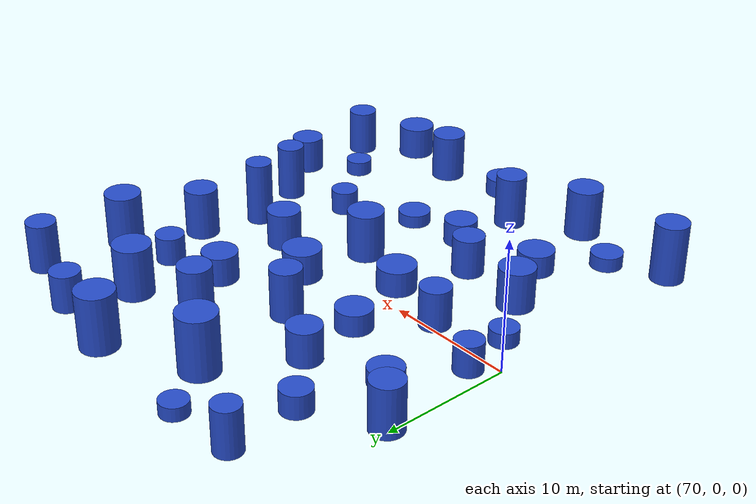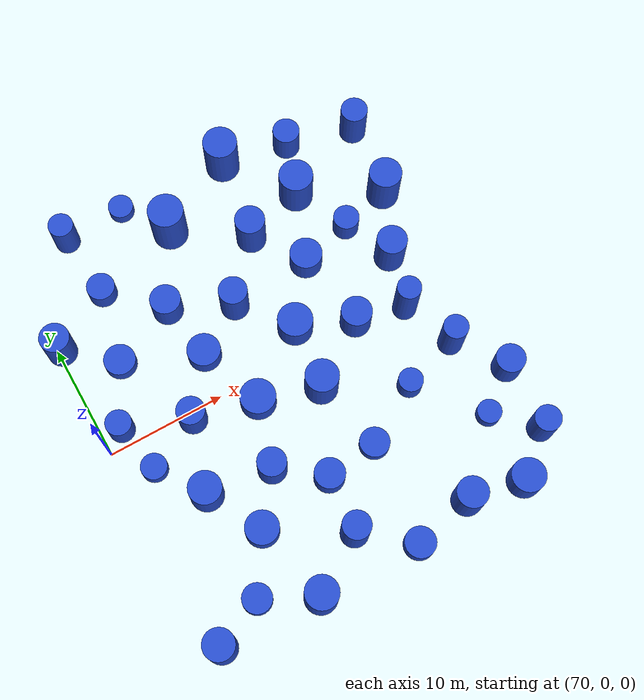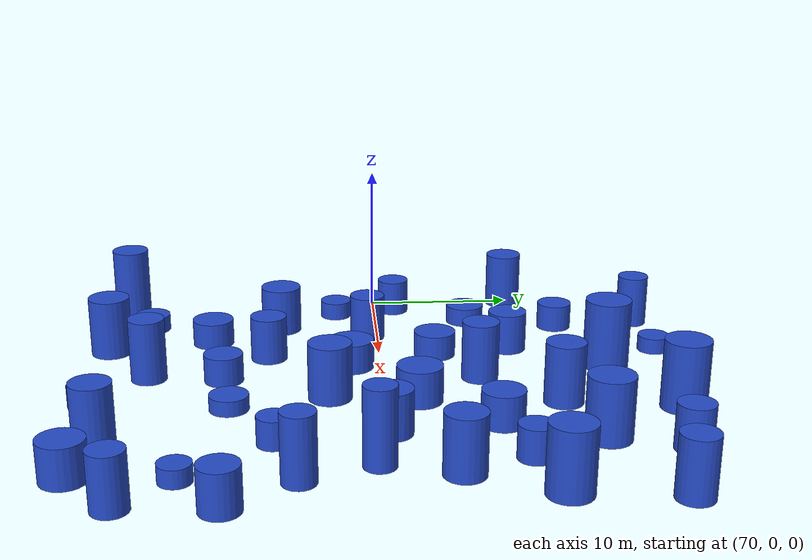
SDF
<sdf version="1.7">
 <world name="default">
  <model name="1">
   <static>1</static>
   <link name="link">
    <inertial>
     <mass>2</mass>
     <inertia><ixx>2.2684</ixx><ixy>0</ixy><ixz>0</ixz><iyy>2.2684</iyy><iyz>0</iyz><izz>1.44593</izz></inertia>
    </inertial>
    <collision name="collision">
     <geometry><cylinder><length>3.0451</length><radius>1.20247</radius></cylinder></geometry>
     <surface><contact><collide_without_contact>1</collide_without_contact></contact></surface>
    </collision>
    <visual name="visual">
     <geometry><cylinder><length>3.0451</length><radius>1.20247</radius></cylinder></geometry>
     <material>
      <script><uri>file://media/materials/scripts/gazebo.material</uri><name>Gazebo/Blue</name></script>
     </material>
    </visual>
    <gravity>0</gravity>
   </link>
   <pose>80.6973 -7.39447 1.52255 0 -0 0</pose>
  </model>
  <model name="2">
   <static>1</static>
   <link name="link">
    <inertial>
     <mass>2</mass>
     <inertia><ixx>2.24208</ixx><ixy>0</ixy><ixz>0</ixz><iyy>2.24208</iyy><iyz>0</iyz><izz>1.66847</izz></inertia>
    </inertial>
    <collision name="collision">
     <geometry><cylinder><length>2.90639</length><radius>1.29169</radius></cylinder></geometry>
     <surface><contact><collide_without_contact>1</collide_without_contact></contact></surface>
    </collision>
    <visual name="visual">
     <geometry><cylinder><length>2.90639</length><radius>1.29169</radius></cylinder></geometry>
     <material>
      <script><uri>file://media/materials/scripts/gazebo.material</uri><name>Gazebo/Blue</name></script>
     </material>
    </visual>
    <gravity>0</gravity>
   </link>
   <pose>92.757 0.175366 1.45319 0 -0 0</pose>
  </model>
  <model name="4">
   <static>1</static>
   <link name="link">
    <inertial>
     <mass>2</mass>
     <inertia><ixx>4.69882</ixx><ixy>0</ixy><ixz>0</ixz><iyy>4.69882</iyy><iyz>0</iyz><izz>2.22425</izz></inertia>
    </inertial>
    <collision name="collision">
     <geometry><cylinder><length>4.63899</length><radius>1.49139</radius></cylinder></geometry>
     <surface><contact><collide_without_contact>1</collide_without_contact></contact></surface>
    </collision>
    <visual name="visual">
     <geometry><cylinder><length>4.63899</length><radius>1.49139</radius></cylinder></geometry>
     <material>
      <script><uri>file://media/materials/scripts/gazebo.material</uri><name>Gazebo/Blue</name></script>
     </material>
    </visual>
    <gravity>0</gravity>
   </link>
   <pose>83.0964 14.8871 2.31949 0 -0 0</pose>
  </model>
  <model name="5">
   <static>1</static>
   <link name="link">
    <inertial>
     <mass>2</mass>
     <inertia><ixx>1.76821</ixx><ixy>0</ixy><ixz>0</ixz><iyy>1.76821</iyy><iyz>0</iyz><izz>1.863</izz></inertia>
    </inertial>
    <collision name="collision">
     <geometry><cylinder><length>2.24059</length><radius>1.36492</radius></cylinder></geometry>
     <surface><contact><collide_without_contact>1</collide_without_contact></contact></surface>
    </collision>
    <visual name="visual">
     <geometry><cylinder><length>2.24059</length><radius>1.36492</radius></cylinder></geometry>
     <material>
      <script><uri>file://media/materials/scripts/gazebo.material</uri><name>Gazebo/Blue</name></script>
     </material>
    </visual>
    <gravity>0</gravity>
   </link>
   <pose>91.7951 6.85711 1.1203 0 -0 0</pose>
  </model>
  <model name="9">
   <static>1</static>
   <link name="link">
    <inertial>
     <mass>2</mass>
     <inertia><ixx>3.22683</ixx><ixy>0</ixy><ixz>0</ixz><iyy>3.22683</iyy><iyz>0</iyz><izz>1.43859</izz></inertia>
    </inertial>
    <collision name="collision">
     <geometry><cylinder><length>3.87882</length><radius>1.19941</radius></cylinder></geometry>
     <surface><contact><collide_without_contact>1</collide_without_contact></contact></surface>
    </collision>
    <visual name="visual">
     <geometry><cylinder><length>3.87882</length><radius>1.19941</radius></cylinder></geometry>
     <material>
      <script><uri>file://media/materials/scripts/gazebo.material</uri><name>Gazebo/Blue</name></script>
     </material>
    </visual>
    <gravity>0</gravity>
   </link>
   <pose>84.7053 6.32276 1.93941 0 -0 0</pose>
  </model>
  <model name="10">
   <static>1</static>
   <link name="link">
    <inertial>
     <mass>2</mass>
     <inertia>
      <ixx>0.945435</ixx>
      <ixy>0</ixy>
      <ixz>0</ixz>
      <iyy>0.945435</iyy>
      <iyz>0</iyz>
      <izz>1.55448</izz>
     </inertia>
    </inertial>
    <collision name="collision">
     <geometry><cylinder><length>1.00457</length><radius>1.24679</radius></cylinder></geometry>
     <surface><contact><collide_without_contact>1</collide_without_contact></contact></surface>
    </collision>
    <visual name="visual">
     <geometry><cylinder><length>1.00457</length><radius>1.24679</radius></cylinder></geometry>
     <material>
      <script><uri>file://media/materials/scripts/gazebo.material</uri><name>Gazebo/Blue</name></script>
     </material>
    </visual>
    <gravity>0</gravity>
   </link>
   <pose>88.8436 -9.60499 0.502286 0 -0 0</pose>
  </model>
  <model name="12">
   <static>1</static>
   <link name="link">
    <inertial>
     <mass>2</mass>
     <inertia><ixx>1.73744</ixx><ixy>0</ixy><ixz>0</ixz><iyy>1.73744</iyy><iyz>0</iyz><izz>2.20157</izz></inertia>
    </inertial>
    <collision name="collision">
     <geometry><cylinder><length>1.95446</length><radius>1.48377</radius></cylinder></geometry>
     <surface><contact><collide_without_contact>1</collide_without_contact></contact></surface>
    </collision>
    <visual name="visual">
     <geometry><cylinder><length>1.95446</length><radius>1.48377</radius></cylinder></geometry>
     <material>
      <script><uri>file://media/materials/scripts/gazebo.material</uri><name>Gazebo/Blue</name></script>
     </material>
    </visual>
    <gravity>0</gravity>
   </link>
   <pose>82.4183 -1.92681 0.977232 0 -0 0</pose>
  </model>
  <model name="14">
   <static>1</static>
   <link name="link">
    <inertial>
     <mass>2</mass>
     <inertia><ixx>3.25121</ixx><ixy>0</ixy><ixz>0</ixz><iyy>3.25121</iyy><iyz>0</iyz><izz>1.62236</izz></inertia>
    </inertial>
    <collision name="collision">
     <geometry><cylinder><length>3.82625</length><radius>1.27372</radius></cylinder></geometry>
     <surface><contact><collide_without_contact>1</collide_without_contact></contact></surface>
    </collision>
    <visual name="visual">
     <geometry><cylinder><length>3.82625</length><radius>1.27372</radius></cylinder></geometry>
     <material>
      <script><uri>file://media/materials/scripts/gazebo.material</uri><name>Gazebo/Blue</name></script>
     </material>
    </visual>
    <gravity>0</gravity>
   </link>
   <pose>98.2023 3.86457 1.91312 0 -0 0</pose>
  </model>
  <model name="18">
   <static>1</static>
   <link name="link">
    <inertial>
     <mass>2</mass>
     <inertia><ixx>3.74185</ixx><ixy>0</ixy><ixz>0</ixz><iyy>3.74185</iyy><iyz>0</iyz><izz>2.06895</izz></inertia>
    </inertial>
    <collision name="collision">
     <geometry><cylinder><length>4.03042</length><radius>1.43839</radius></cylinder></geometry>
     <surface><contact><collide_without_contact>1</collide_without_contact></contact></surface>
    </collision>
    <visual name="visual">
     <geometry><cylinder><length>4.03042</length><radius>1.43839</radius></cylinder></geometry>
     <material>
      <script><uri>file://media/materials/scripts/gazebo.material</uri><name>Gazebo/Blue</name></script>
     </material>
    </visual>
    <gravity>0</gravity>
   </link>
   <pose>94.1201 12.7132 2.01521 0 -0 0</pose>
  </model>
  <model name="20">
   <static>1</static>
   <link name="link">
    <inertial>
     <mass>2</mass>
     <inertia><ixx>3.08082</ixx><ixy>0</ixy><ixz>0</ixz><iyy>3.08082</iyy><iyz>0</iyz><izz>1.29463</izz></inertia>
    </inertial>
    <collision name="collision">
     <geometry><cylinder><length>3.82113</length><radius>1.13782</radius></cylinder></geometry>
     <surface><contact><collide_without_contact>1</collide_without_contact></contact></surface>
    </collision>
    <visual name="visual">
     <geometry><cylinder><length>3.82113</length><radius>1.13782</radius></cylinder></geometry>
     <material>
      <script><uri>file://media/materials/scripts/gazebo.material</uri><name>Gazebo/Blue</name></script>
     </material>
    </visual>
    <gravity>0</gravity>
   </link>
   <pose>101.496 15.7288 1.91057 0 -0 0</pose>
  </model>
  <model name="23">
   <static>1</static>
   <link name="link">
    <inertial>
     <mass>2</mass>
     <inertia><ixx>3.58983</ixx><ixy>0</ixy><ixz>0</ixz><iyy>3.58983</iyy><iyz>0</iyz><izz>1.36018</izz></inertia>
    </inertial>
    <collision name="collision">
     <geometry><cylinder><length>4.17833</length><radius>1.16627</radius></cylinder></geometry>
     <surface><contact><collide_without_contact>1</collide_without_contact></contact></surface>
    </collision>
    <visual name="visual">
     <geometry><cylinder><length>4.17833</length><radius>1.16627</radius></cylinder></geometry>
     <material>
      <script><uri>file://media/materials/scripts/gazebo.material</uri><name>Gazebo/Blue</name></script>
     </material>
    </visual>
    <gravity>0</gravity>
   </link>
   <pose>83.8544 -15.0441 2.08917 0 -0 0</pose>
  </model>
  <model name="25">
   <static>1</static>
   <link name="link">
    <inertial>
     <mass>2</mass>
     <inertia><ixx>4.39114</ixx><ixy>0</ixy><ixz>0</ixz><iyy>4.39114</iyy><iyz>0</iyz><izz>1.60554</izz></inertia>
    </inertial>
    <collision name="collision">
     <geometry><cylinder><length>4.64006</length><radius>1.2671</radius></cylinder></geometry>
     <surface><contact><collide_without_contact>1</collide_without_contact></contact></surface>
    </collision>
    <visual name="visual">
     <geometry><cylinder><length>4.64006</length><radius>1.2671</radius></cylinder></geometry>
     <material>
      <script><uri>file://media/materials/scripts/gazebo.material</uri><name>Gazebo/Blue</name></script>
     </material>
    </visual>
    <gravity>0</gravity>
   </link>
   <pose>70.6013 -17.7327 2.32003 0 -0 0</pose>
  </model>
  <model name="27">
   <static>1</static>
   <link name="link">
    <inertial>
     <mass>2</mass>
     <inertia>
      <ixx>0.729598</ixx>
      <ixy>0</ixy>
      <ixz>0</ixz>
      <iyy>0.729598</iyy>
      <iyz>0</iyz>
      <izz>1.02175</izz>
     </inertia>
    </inertial>
    <collision name="collision">
     <geometry><cylinder><length>1.14557</length><radius>1.01082</radius></cylinder></geometry>
     <surface><contact><collide_without_contact>1</collide_without_contact></contact></surface>
    </collision>
    <visual name="visual">
     <geometry><cylinder><length>1.14557</length><radius>1.01082</radius></cylinder></geometry>
     <material>
      <script><uri>file://media/materials/scripts/gazebo.material</uri><name>Gazebo/Blue</name></script>
     </material>
    </visual>
    <gravity>0</gravity>
   </link>
   <pose>98.1711 -11.9642 0.572784 0 -0 0</pose>
  </model>
  <model name="31">
   <static>1</static>
   <link name="link">
    <inertial>
     <mass>2</mass>
     <inertia><ixx>1.2338</ixx><ixy>0</ixy><ixz>0</ixz><iyy>1.2338</iyy><iyz>0</iyz><izz>1.3907</izz></inertia>
    </inertial>
    <collision name="collision">
     <geometry><cylinder><length>1.79742</length><radius>1.17928</radius></cylinder></geometry>
     <surface><contact><collide_without_contact>1</collide_without_contact></contact></surface>
    </collision>
    <visual name="visual">
     <geometry><cylinder><length>1.79742</length><radius>1.17928</radius></cylinder></geometry>
     <material>
      <script><uri>file://media/materials/scripts/gazebo.material</uri><name>Gazebo/Blue</name></script>
     </material>
    </visual>
    <gravity>0</gravity>
   </link>
   <pose>75.6136 12.7351 0.898712 0 -0 0</pose>
  </model>
  <model name="42">
   <static>1</static>
   <link name="link">
    <inertial>
     <mass>2</mass>
     <inertia><ixx>2.62219</ixx><ixy>0</ixy><ixz>0</ixz><iyy>2.62219</iyy><iyz>0</iyz><izz>1.08521</izz></inertia>
    </inertial>
    <collision name="collision">
     <geometry><cylinder><length>3.53236</length><radius>1.04173</radius></cylinder></geometry>
     <surface><contact><collide_without_contact>1</collide_without_contact></contact></surface>
    </collision>
    <visual name="visual">
     <geometry><cylinder><length>3.53236</length><radius>1.04173</radius></cylinder></geometry>
     <material>
      <script><uri>file://media/materials/scripts/gazebo.material</uri><name>Gazebo/Blue</name></script>
     </material>
    </visual>
    <gravity>0</gravity>
   </link>
   <pose>75.0855 18.4586 1.76618 0 -0 0</pose>
  </model>
  <model name="47">
   <static>1</static>
   <link name="link">
    <inertial>
     <mass>2</mass>
     <inertia><ixx>3.12949</ixx><ixy>0</ixy><ixz>0</ixz><iyy>3.12949</iyy><iyz>0</iyz><izz>1.6363</izz></inertia>
    </inertial>
    <collision name="collision">
     <geometry><cylinder><length>3.72399</length><radius>1.27918</radius></cylinder></geometry>
     <surface><contact><collide_without_contact>1</collide_without_contact></contact></surface>
    </collision>
    <visual name="visual">
     <geometry><cylinder><length>3.72399</length><radius>1.27918</radius></cylinder></geometry>
     <material>
      <script><uri>file://media/materials/scripts/gazebo.material</uri><name>Gazebo/Blue</name></script>
     </material>
    </visual>
    <gravity>0</gravity>
   </link>
   <pose>92.9366 -17.1481 1.86199 0 -0 0</pose>
  </model>
  <model name="52">
   <static>1</static>
   <link name="link">
    <inertial>
     <mass>2</mass>
     <inertia>
      <ixx>0.831043</ixx>
      <ixy>0</ixy>
      <ixz>0</ixz>
      <iyy>0.831043</iyy>
      <iyz>0</iyz>
      <izz>1.18765</izz>
     </inertia>
    </inertial>
    <collision name="collision">
     <geometry><cylinder><length>1.19303</length><radius>1.08979</radius></cylinder></geometry>
     <surface><contact><collide_without_contact>1</collide_without_contact></contact></surface>
    </collision>
    <visual name="visual">
     <geometry><cylinder><length>1.19303</length><radius>1.08979</radius></cylinder></geometry>
     <material>
      <script><uri>file://media/materials/scripts/gazebo.material</uri><name>Gazebo/Blue</name></script>
     </material>
    </visual>
    <gravity>0</gravity>
   </link>
   <pose>72.5245 -2.77846 0.596513 0 -0 0</pose>
  </model>
  <model name="57">
   <static>1</static>
   <link name="link">
    <inertial>
     <mass>2</mass>
     <inertia><ixx>1.07877</ixx><ixy>0</ixy><ixz>0</ixz><iyy>1.07877</iyy><iyz>0</iyz><izz>1.04254</izz></inertia>
    </inertial>
    <collision name="collision">
     <geometry><cylinder><length>1.82893</length><radius>1.02105</radius></cylinder></geometry>
     <surface><contact><collide_without_contact>1</collide_without_contact></contact></surface>
    </collision>
    <visual name="visual">
     <geometry><cylinder><length>1.82893</length><radius>1.02105</radius></cylinder></geometry>
     <material>
      <script><uri>file://media/materials/scripts/gazebo.material</uri><name>Gazebo/Blue</name></script>
     </material>
    </visual>
    <gravity>0</gravity>
   </link>
   <pose>93.853 -6.73903 0.914464 0 -0 0</pose>
  </model>
  <model name="62">
   <static>1</static>
   <link name="link">
    <inertial>
     <mass>2</mass>
     <inertia><ixx>3.9194</ixx><ixy>0</ixy><ixz>0</ixz><iyy>3.9194</iyy><iyz>0</iyz><izz>1.90143</izz></inertia>
    </inertial>
    <collision name="collision">
     <geometry><cylinder><length>4.22044</length><radius>1.37892</radius></cylinder></geometry>
     <surface><contact><collide_without_contact>1</collide_without_contact></contact></surface>
    </collision>
    <visual name="visual">
     <geometry><cylinder><length>4.22044</length><radius>1.37892</radius></cylinder></geometry>
     <material>
      <script><uri>file://media/materials/scripts/gazebo.material</uri><name>Gazebo/Blue</name></script>
     </material>
    </visual>
    <gravity>0</gravity>
   </link>
   <pose>100.7 9.19752 2.11022 0 -0 0</pose>
  </model>
  <model name="66">
   <static>1</static>
   <link name="link">
    <inertial>
     <mass>2</mass>
     <inertia><ixx>1.13186</ixx><ixy>0</ixy><ixz>0</ixz><iyy>1.13186</iyy><iyz>0</iyz><izz>1.7437</izz></inertia>
    </inertial>
    <collision name="collision">
     <geometry><cylinder><length>1.24904</length><radius>1.32049</radius></cylinder></geometry>
     <surface><contact><collide_without_contact>1</collide_without_contact></contact></surface>
    </collision>
    <visual name="visual">
     <geometry><cylinder><length>1.24904</length><radius>1.32049</radius></cylinder></geometry>
     <material>
      <script><uri>file://media/materials/scripts/gazebo.material</uri><name>Gazebo/Blue</name></script>
     </material>
    </visual>
    <gravity>0</gravity>
   </link>
   <pose>74.1453 6.48343 0.624518 0 -0 0</pose>
  </model>
  <model name="68">
   <static>1</static>
   <link name="link">
    <inertial>
     <mass>2</mass>
     <inertia><ixx>2.04155</ixx><ixy>0</ixy><ixz>0</ixz><iyy>2.04155</iyy><iyz>0</iyz><izz>1.64611</izz></inertia>
    </inertial>
    <collision name="collision">
     <geometry><cylinder><length>2.70388</length><radius>1.28301</radius></cylinder></geometry>
     <surface><contact><collide_without_contact>1</collide_without_contact></contact></surface>
    </collision>
    <visual name="visual">
     <geometry><cylinder><length>2.70388</length><radius>1.28301</radius></cylinder></geometry>
     <material>
      <script><uri>file://media/materials/scripts/gazebo.material</uri><name>Gazebo/Blue</name></script>
     </material>
    </visual>
    <gravity>0</gravity>
   </link>
   <pose>79.6793 8.77001 1.35194 0 -0 0</pose>
  </model>
  <model name="69">
   <static>1</static>
   <link name="link">
    <inertial>
     <mass>2</mass>
     <inertia>
      <ixx>0.958419</ixx>
      <ixy>0</ixy>
      <ixz>0</ixz>
      <iyy>0.958419</iyy>
      <iyz>0</iyz>
      <izz>1.49661</izz>
     </inertia>
    </inertial>
    <collision name="collision">
     <geometry><cylinder><length>1.1228</length><radius>1.22336</radius></cylinder></geometry>
     <surface><contact><collide_without_contact>1</collide_without_contact></contact></surface>
    </collision>
    <visual name="visual">
     <geometry><cylinder><length>1.1228</length><radius>1.22336</radius></cylinder></geometry>
     <material>
      <script><uri>file://media/materials/scripts/gazebo.material</uri><name>Gazebo/Blue</name></script>
     </material>
    </visual>
    <gravity>0</gravity>
   </link>
   <pose>74.7098 -15.8273 0.561402 0 -0 0</pose>
  </model>
  <model name="71">
   <static>1</static>
   <link name="link">
    <inertial>
     <mass>2</mass>
     <inertia><ixx>3.58328</ixx><ixy>0</ixy><ixz>0</ixz><iyy>3.58328</iyy><iyz>0</iyz><izz>1.07176</izz></inertia>
    </inertial>
    <collision name="collision">
     <geometry><cylinder><length>4.27603</length><radius>1.03526</radius></cylinder></geometry>
     <surface><contact><collide_without_contact>1</collide_without_contact></contact></surface>
    </collision>
    <visual name="visual">
     <geometry><cylinder><length>4.27603</length><radius>1.03526</radius></cylinder></geometry>
     <material>
      <script><uri>file://media/materials/scripts/gazebo.material</uri><name>Gazebo/Blue</name></script>
     </material>
    </visual>
    <gravity>0</gravity>
   </link>
   <pose>98.686 -5.22517 2.13801 0 -0 0</pose>
  </model>
  <model name="72">
   <static>1</static>
   <link name="link">
    <inertial>
     <mass>2</mass>
     <inertia><ixx>2.05239</ixx><ixy>0</ixy><ixz>0</ixz><iyy>2.05239</iyy><iyz>0</iyz><izz>1.31404</izz></inertia>
    </inertial>
    <collision name="collision">
     <geometry><cylinder><length>2.89348</length><radius>1.14632</radius></cylinder></geometry>
     <surface><contact><collide_without_contact>1</collide_without_contact></contact></surface>
    </collision>
    <visual name="visual">
     <geometry><cylinder><length>2.89348</length><radius>1.14632</radius></cylinder></geometry>
     <material>
      <script><uri>file://media/materials/scripts/gazebo.material</uri><name>Gazebo/Blue</name></script>
     </material>
    </visual>
    <gravity>0</gravity>
   </link>
   <pose>95.7105 17.2756 1.44674 0 -0 0</pose>
  </model>
  <model name="73">
   <static>1</static>
   <link name="link">
    <inertial>
     <mass>2</mass>
     <inertia><ixx>2.68918</ixx><ixy>0</ixy><ixz>0</ixz><iyy>2.68918</iyy><iyz>0</iyz><izz>1.19251</izz></inertia>
    </inertial>
    <collision name="collision">
     <geometry><cylinder><length>3.54366</length><radius>1.09202</radius></cylinder></geometry>
     <surface><contact><collide_without_contact>1</collide_without_contact></contact></surface>
    </collision>
    <visual name="visual">
     <geometry><cylinder><length>3.54366</length><radius>1.09202</radius></cylinder></geometry>
     <material>
      <script><uri>file://media/materials/scripts/gazebo.material</uri><name>Gazebo/Blue</name></script>
     </material>
    </visual>
    <gravity>0</gravity>
   </link>
   <pose>101.219 -15.0288 1.77183 0 -0 0</pose>
  </model>
  <model name="75">
   <static>1</static>
   <link name="link">
    <inertial>
     <mass>2</mass>
     <inertia><ixx>2.64904</ixx><ixy>0</ixy><ixz>0</ixz><iyy>2.64904</iyy><iyz>0</iyz><izz>1.8781</izz></inertia>
    </inertial>
    <collision name="collision">
     <geometry><cylinder><length>3.20311</length><radius>1.37044</radius></cylinder></geometry>
     <surface><contact><collide_without_contact>1</collide_without_contact></contact></surface>
    </collision>
    <visual name="visual">
     <geometry><cylinder><length>3.20311</length><radius>1.37044</radius></cylinder></geometry>
     <material>
      <script><uri>file://media/materials/scripts/gazebo.material</uri><name>Gazebo/Blue</name></script>
     </material>
    </visual>
    <gravity>0</gravity>
   </link>
   <pose>75.1926 -6.68164 1.60155 0 -0 0</pose>
  </model>
  <model name="78">
   <static>1</static>
   <link name="link">
    <inertial>
     <mass>2</mass>
     <inertia><ixx>3.20216</ixx><ixy>0</ixy><ixz>0</ixz><iyy>3.20216</iyy><iyz>0</iyz><izz>1.527</izz></inertia>
    </inertial>
    <collision name="collision">
     <geometry><cylinder><length>3.82518</length><radius>1.23572</radius></cylinder></geometry>
     <surface><contact><collide_without_contact>1</collide_without_contact></contact></surface>
    </collision>
    <visual name="visual">
     <geometry><cylinder><length>3.82518</length><radius>1.23572</radius></cylinder></geometry>
     <material>
      <script><uri>file://media/materials/scripts/gazebo.material</uri><name>Gazebo/Blue</name></script>
     </material>
    </visual>
    <gravity>0</gravity>
   </link>
   <pose>70.3775 9.7608 1.91259 0 -0 0</pose>
  </model>
  <model name="93">
   <static>1</static>
   <link name="link">
    <inertial>
     <mass>2</mass>
     <inertia><ixx>1.43921</ixx><ixy>0</ixy><ixz>0</ixz><iyy>1.43921</iyy><iyz>0</iyz><izz>1.94279</izz></inertia>
    </inertial>
    <collision name="collision">
     <geometry><cylinder><length>1.67538</length><radius>1.39384</radius></cylinder></geometry>
     <surface><contact><collide_without_contact>1</collide_without_contact></contact></surface>
    </collision>
    <visual name="visual">
     <geometry><cylinder><length>1.67538</length><radius>1.39384</radius></cylinder></geometry>
     <material>
      <script><uri>file://media/materials/scripts/gazebo.material</uri><name>Gazebo/Blue</name></script>
     </material>
    </visual>
    <gravity>0</gravity>
   </link>
   <pose>80.4902 3.74739 0.837688 0 -0 0</pose>
  </model>
  <model name="94">
   <static>1</static>
   <link name="link">
    <inertial>
     <mass>2</mass>
     <inertia><ixx>4.58407</ixx><ixy>0</ixy><ixz>0</ixz><iyy>4.58407</iyy><iyz>0</iyz><izz>1.00101</izz></inertia>
    </inertial>
    <collision name="collision">
     <geometry><cylinder><length>4.94988</length><radius>1.00051</radius></cylinder></geometry>
     <surface><contact><collide_without_contact>1</collide_without_contact></contact></surface>
    </collision>
    <visual name="visual">
     <geometry><cylinder><length>4.94988</length><radius>1.00051</radius></cylinder></geometry>
     <material>
      <script><uri>file://media/materials/scripts/gazebo.material</uri><name>Gazebo/Blue</name></script>
     </material>
    </visual>
    <gravity>0</gravity>
   </link>
   <pose>96.9632 -0.744304 2.47494 0 -0 0</pose>
  </model>
  <model name="97">
   <static>1</static>
   <link name="link">
    <inertial>
     <mass>2</mass>
     <inertia><ixx>1.48409</ixx><ixy>0</ixy><ixz>0</ixz><iyy>1.48409</iyy><iyz>0</iyz><izz>1.9357</izz></inertia>
    </inertial>
    <collision name="collision">
     <geometry><cylinder><length>1.75995</length><radius>1.3913</radius></cylinder></geometry>
     <surface><contact><collide_without_contact>1</collide_without_contact></contact></surface>
    </collision>
    <visual name="visual">
     <geometry><cylinder><length>1.75995</length><radius>1.3913</radius></cylinder></geometry>
     <material>
      <script><uri>file://media/materials/scripts/gazebo.material</uri><name>Gazebo/Blue</name></script>
     </material>
    </visual>
    <gravity>0</gravity>
   </link>
   <pose>77.6379 -11.3255 0.879977 0 -0 0</pose>
  </model>
  <model name="99">
   <static>1</static>
   <link name="link">
    <inertial>
     <mass>2</mass>
     <inertia><ixx>3.275</ixx><ixy>0</ixy><ixz>0</ixz><iyy>3.275</iyy><iyz>0</iyz><izz>1.92904</izz></inertia>
    </inertial>
    <collision name="collision">
     <geometry><cylinder><length>3.72329</length><radius>1.3889</radius></cylinder></geometry>
     <surface><contact><collide_without_contact>1</collide_without_contact></contact></surface>
    </collision>
    <visual name="visual">
     <geometry><cylinder><length>3.72329</length><radius>1.3889</radius></cylinder></geometry>
     <material>
      <script><uri>file://media/materials/scripts/gazebo.material</uri><name>Gazebo/Blue</name></script>
     </material>
    </visual>
    <gravity>0</gravity>
   </link>
   <pose>87.476 -3.39213 1.86165 0 -0 0</pose>
  </model>
  <model name="100">
   <static>1</static>
   <link name="link">
    <inertial>
     <mass>2</mass>
     <inertia><ixx>4.35536</ixx><ixy>0</ixy><ixz>0</ixz><iyy>4.35536</iyy><iyz>0</iyz><izz>2.10136</izz></inertia>
    </inertial>
    <collision name="collision">
     <geometry><cylinder><length>4.45287</length><radius>1.44961</radius></cylinder></geometry>
     <surface><contact><collide_without_contact>1</collide_without_contact></contact></surface>
    </collision>
    <visual name="visual">
     <geometry><cylinder><length>4.45287</length><radius>1.44961</radius></cylinder></geometry>
     <material>
      <script><uri>file://media/materials/scripts/gazebo.material</uri><name>Gazebo/Blue</name></script>
     </material>
    </visual>
    <gravity>0</gravity>
   </link>
   <pose>89.9462 18.2766 2.22644 0 -0 0</pose>
  </model>
  <model name="101">
   <static>1</static>
   <link name="link">
    <inertial>
     <mass>2</mass>
     <inertia><ixx>2.03578</ixx><ixy>0</ixy><ixz>0</ixz><iyy>2.03578</iyy><iyz>0</iyz><izz>2.17373</izz></inertia>
    </inertial>
    <collision name="collision">
     <geometry><cylinder><length>2.3861</length><radius>1.47436</radius></cylinder></geometry>
     <surface><contact><collide_without_contact>1</collide_without_contact></contact></surface>
    </collision>
    <visual name="visual">
     <geometry><cylinder><length>2.3861</length><radius>1.47436</radius></cylinder></geometry>
     <material>
      <script><uri>file://media/materials/scripts/gazebo.material</uri><name>Gazebo/Blue</name></script>
     </material>
    </visual>
    <gravity>0</gravity>
   </link>
   <pose>88.1361 2.15924 1.19305 0 -0 0</pose>
  </model>
  <model name="104">
   <static>1</static>
   <link name="link">
    <inertial>
     <mass>2</mass>
     <inertia><ixx>2.05007</ixx><ixy>0</ixy><ixz>0</ixz><iyy>2.05007</iyy><iyz>0</iyz><izz>1.97035</izz></inertia>
    </inertial>
    <collision name="collision">
     <geometry><cylinder><length>2.52772</length><radius>1.40369</radius></cylinder></geometry>
     <surface><contact><collide_without_contact>1</collide_without_contact></contact></surface>
    </collision>
    <visual name="visual">
     <geometry><cylinder><length>2.52772</length><radius>1.40369</radius></cylinder></geometry>
     <material>
      <script><uri>file://media/materials/scripts/gazebo.material</uri><name>Gazebo/Blue</name></script>
     </material>
    </visual>
    <gravity>0</gravity>
   </link>
   <pose>97.7376 -18.0312 1.26386 0 -0 0</pose>
  </model>
  <model name="105">
   <static>1</static>
   <link name="link">
    <inertial>
     <mass>2</mass>
     <inertia><ixx>3.48473</ixx><ixy>0</ixy><ixz>0</ixz><iyy>3.48473</iyy><iyz>0</iyz><izz>1.59452</izz></inertia>
    </inertial>
    <collision name="collision">
     <geometry><cylinder><length>4.01558</length><radius>1.26274</radius></cylinder></geometry>
     <surface><contact><collide_without_contact>1</collide_without_contact></contact></surface>
    </collision>
    <visual name="visual">
     <geometry><cylinder><length>4.01558</length><radius>1.26274</radius></cylinder></geometry>
     <material>
      <script><uri>file://media/materials/scripts/gazebo.material</uri><name>Gazebo/Blue</name></script>
     </material>
    </visual>
    <gravity>0</gravity>
   </link>
   <pose>88.8417 11.0554 2.00779 0 -0 0</pose>
  </model>
  <model name="106">
   <static>1</static>
   <link name="link">
    <inertial>
     <mass>2</mass>
     <inertia><ixx>3.55021</ixx><ixy>0</ixy><ixz>0</ixz><iyy>3.55021</iyy><iyz>0</iyz><izz>1.85224</izz></inertia>
    </inertial>
    <collision name="collision">
     <geometry><cylinder><length>3.96794</length><radius>1.36097</radius></cylinder></geometry>
     <surface><contact><collide_without_contact>1</collide_without_contact></contact></surface>
    </collision>
    <visual name="visual">
     <geometry><cylinder><length>3.96794</length><radius>1.36097</radius></cylinder></geometry>
     <material>
      <script><uri>file://media/materials/scripts/gazebo.material</uri><name>Gazebo/Blue</name></script>
     </material>
    </visual>
    <gravity>0</gravity>
   </link>
   <pose>79.0781 -18.1069 1.98397 0 -0 0</pose>
  </model>
  <model name="107">
   <static>1</static>
   <link name="link">
    <inertial>
     <mass>2</mass>
     <inertia><ixx>2.3214</ixx><ixy>0</ixy><ixz>0</ixz><iyy>2.3214</iyy><iyz>0</iyz><izz>1.3839</izz></inertia>
    </inertial>
    <collision name="collision">
     <geometry><cylinder><length>3.12677</length><radius>1.17639</radius></cylinder></geometry>
     <surface><contact><collide_without_contact>1</collide_without_contact></contact></surface>
    </collision>
    <visual name="visual">
     <geometry><cylinder><length>3.12677</length><radius>1.17639</radius></cylinder></geometry>
     <material>
      <script><uri>file://media/materials/scripts/gazebo.material</uri><name>Gazebo/Blue</name></script>
     </material>
    </visual>
    <gravity>0</gravity>
   </link>
   <pose>77.095 -0.667211 1.56339 0 -0 0</pose>
  </model>
  <model name="112">
   <static>1</static>
   <link name="link">
    <inertial>
     <mass>2</mass>
     <inertia><ixx>1.99413</ixx><ixy>0</ixy><ixz>0</ixz><iyy>1.99413</iyy><iyz>0</iyz><izz>1.49659</izz></inertia>
    </inertial>
    <collision name="collision">
     <geometry><cylinder><length>2.73405</length><radius>1.22335</radius></cylinder></geometry>
     <surface><contact><collide_without_contact>1</collide_without_contact></contact></surface>
    </collision>
    <visual name="visual">
     <geometry><cylinder><length>2.73405</length><radius>1.22335</radius></cylinder></geometry>
     <material>
      <script><uri>file://media/materials/scripts/gazebo.material</uri><name>Gazebo/Blue</name></script>
     </material>
    </visual>
    <gravity>0</gravity>
   </link>
   <pose>101.58 -9.2988 1.36702 0 -0 0</pose>
  </model>
  <model name="113">
   <static>1</static>
   <link name="link">
    <inertial>
     <mass>2</mass>
     <inertia><ixx>1.36504</ixx><ixy>0</ixy><ixz>0</ixz><iyy>1.36504</iyy><iyz>0</iyz><izz>1.19435</izz></inertia>
    </inertial>
    <collision name="collision">
     <geometry><cylinder><length>2.14644</length><radius>1.09286</radius></cylinder></geometry>
     <surface><contact><collide_without_contact>1</collide_without_contact></contact></surface>
    </collision>
    <visual name="visual">
     <geometry><cylinder><length>2.14644</length><radius>1.09286</radius></cylinder></geometry>
     <material>
      <script><uri>file://media/materials/scripts/gazebo.material</uri><name>Gazebo/Blue</name></script>
     </material>
    </visual>
    <gravity>0</gravity>
   </link>
   <pose>96.3732 8.06501 1.07322 0 -0 0</pose>
  </model>
  <model name="114">
   <static>1</static>
   <link name="link">
    <inertial>
     <mass>2</mass>
     <inertia><ixx>1.15139</ixx><ixy>0</ixy><ixz>0</ixz><iyy>1.15139</iyy><iyz>0</iyz><izz>1.6305</izz></inertia>
    </inertial>
    <collision name="collision">
     <geometry><cylinder><length>1.42015</length><radius>1.27691</radius></cylinder></geometry>
     <surface><contact><collide_without_contact>1</collide_without_contact></contact></surface>
    </collision>
    <visual name="visual">
     <geometry><cylinder><length>1.42015</length><radius>1.27691</radius></cylinder></geometry>
     <material>
      <script><uri>file://media/materials/scripts/gazebo.material</uri><name>Gazebo/Blue</name></script>
     </material>
    </visual>
    <gravity>0</gravity>
   </link>
   <pose>87.8339 -18.296 0.710074 0 -0 0</pose>
  </model>
  <model name="117">
   <static>1</static>
   <link name="link">
    <inertial>
     <mass>2</mass>
     <inertia><ixx>1.55392</ixx><ixy>0</ixy><ixz>0</ixz><iyy>1.55392</iyy><iyz>0</iyz><izz>1.16121</izz></inertia>
    </inertial>
    <collision name="collision">
     <geometry><cylinder><length>2.41659</length><radius>1.07759</radius></cylinder></geometry>
     <surface><contact><collide_without_contact>1</collide_without_contact></contact></surface>
    </collision>
    <visual name="visual">
     <geometry><cylinder><length>2.41659</length><radius>1.07759</radius></cylinder></geometry>
     <material>
      <script><uri>file://media/materials/scripts/gazebo.material</uri><name>Gazebo/Blue</name></script>
     </material>
    </visual>
    <gravity>0</gravity>
   </link>
   <pose>71.6815 1.43382 1.2083 0 -0 0</pose>
  </model>
  <model name="124">
   <static>1</static>
   <link name="link">
    <inertial>
     <mass>2</mass>
     <inertia><ixx>1.39655</ixx><ixy>0</ixy><ixz>0</ixz><iyy>1.39655</iyy><iyz>0</iyz><izz>1.61052</izz></inertia>
    </inertial>
    <collision name="collision">
     <geometry><cylinder><length>1.88354</length><radius>1.26906</radius></cylinder></geometry>
     <surface><contact><collide_without_contact>1</collide_without_contact></contact></surface>
    </collision>
    <visual name="visual">
     <geometry><cylinder><length>1.88354</length><radius>1.26906</radius></cylinder></geometry>
     <material>
      <script><uri>file://media/materials/scripts/gazebo.material</uri><name>Gazebo/Blue</name></script>
     </material>
    </visual>
    <gravity>0</gravity>
   </link>
   <pose>84.3412 -10.198 0.94177 0 -0 0</pose>
  </model>
  <model name="127">
   <static>1</static>
   <link name="link">
    <inertial>
     <mass>2</mass>
     <inertia>
      <ixx>0.747409</ixx>
      <ixy>0</ixy>
      <ixz>0</ixz>
      <iyy>0.747409</iyy>
      <iyz>0</iyz>
      <izz>1.12528</izz>
     </inertia>
    </inertial>
    <collision name="collision">
     <geometry><cylinder><length>1.0529</length><radius>1.06079</radius></cylinder></geometry>
     <surface><contact><collide_without_contact>1</collide_without_contact></contact></surface>
    </collision>
    <visual name="visual">
     <geometry><cylinder><length>1.0529</length><radius>1.06079</radius></cylinder></geometry>
     <material>
      <script><uri>file://media/materials/scripts/gazebo.material</uri><name>Gazebo/Blue</name></script>
     </material>
    </visual>
    <gravity>0</gravity>
   </link>
   <pose>80.3764 18.7697 0.526451 0 -0 0</pose>
  </model>
 </world>
</sdf>
